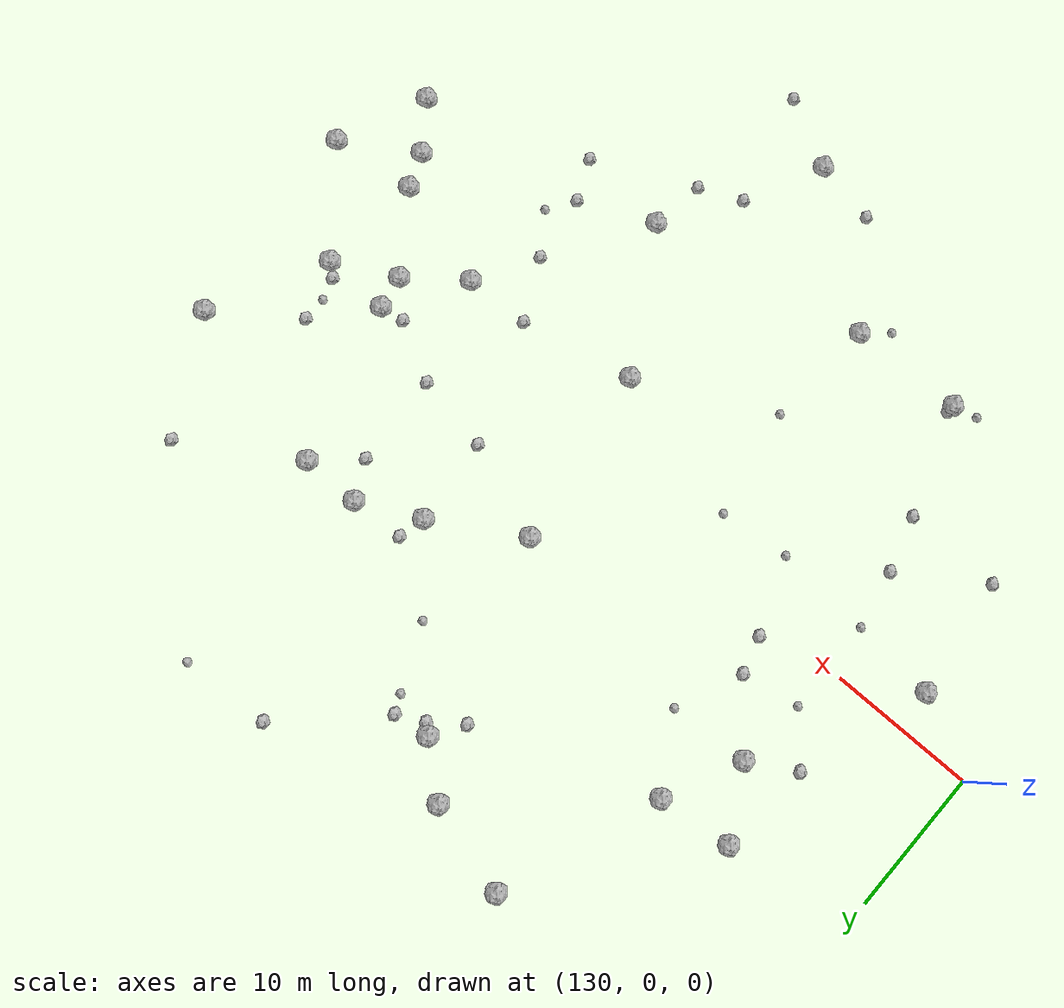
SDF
<sdf version="1.6">
 <world name="default">
  <include><uri>model://sun</uri></include>
  <model name="rock1_4_2">
   <include><uri>model://rock1</uri><pose>161.18001202732881 6.1246033134045135 0.5 0 0 0</pose></include>
  </model>
  <model name="rock1_4_3">
   <include><uri>model://rock1</uri><pose>175.63019919142323 -4.450995338454028 0.5 0 0 0</pose></include>
  </model>
  <model name="rock1_4_4">
   <include><uri>model://rock1</uri><pose>162.68112056038052 -26.176166151829076 0.5 0 0 0</pose></include>
  </model>
  <model name="rock1_4_5">
   <include><uri>model://rock1</uri><pose>187.8348194103687 8.736137206545052 0.5 0 0 0</pose></include>
  </model>
  <model name="rock1_4_6">
   <include><uri>model://rock1</uri><pose>163.151462612979 -6.312333316694449 0.5 0 0 0</pose></include>
  </model>
  <model name="rock1_4_7">
   <include><uri>model://rock1</uri><pose>184.20137734383766 -9.098329405868672 0.5 0 0 0</pose></include>
  </model>
  <model name="rock1_4_8">
   <include><uri>model://rock1</uri><pose>145.63526438491476 -18.79087476991414 0.5 0 0 0</pose></include>
  </model>
  <model name="rock1_4_9">
   <include><uri>model://rock1</uri><pose>154.4141084048062 22.757739737243497 0.5 0 0 0</pose></include>
  </model>
  <model name="rock1_4_10">
   <include><uri>model://rock1</uri><pose>138.86572819339335 12.749516522450627 0.5 0 0 0</pose></include>
  </model>
  <model name="rock1_4_11">
   <include><uri>model://rock1</uri><pose>178.98851683220647 0.8460404536111739 0.5 0 0 0</pose></include>
  </model>
  <model name="rock1_4_12">
   <include><uri>model://rock1</uri><pose>183.74665150148508 0.6990577433027632 0.5 0 0 0</pose></include>
  </model>
  <model name="rock1_4_13">
   <include><uri>model://rock1</uri><pose>168.76587323726326 -15.686156623183987 0.5 0 0 0</pose></include>
  </model>
  <model name="rock1_4_14">
   <include><uri>model://rock1</uri><pose>157.73645786737094 20.019079878341714 0.5 0 0 0</pose></include>
  </model>
  <model name="rock1_4_15">
   <include><uri>model://rock1</uri><pose>171.51534121703827 11.793385821304035 0.5 0 0 0</pose></include>
  </model>
  <model name="rock1_4_16">
   <include><uri>model://rock1</uri><pose>189.22433460729405 -5.992238127654403 0.5 0 0 0</pose></include>
  </model>
  <model name="rock1_4_17">
   <include><uri>model://rock1</uri><pose>148.05435744580012 24.47480041148429 0.5 0 0 0</pose></include>
  </model>
  <model name="rock1_4_18">
   <include><uri>model://rock1</uri><pose>183.2130496080744 -6.698743223876086 0.5 0 0 0</pose></include>
  </model>
  <model name="rock1_4_19">
   <include><uri>model://rock1</uri><pose>135.3349611878877 -2.8294462209317928 0.5 0 0 0</pose></include>
  </model>
  <model name="rock1_4_20">
   <include><uri>model://rock1</uri><pose>143.9520283714035 13.332481415476103 0.5 0 0 0</pose></include>
  </model>
  <model name="rock1_4_21">
   <include><uri>model://rock1</uri><pose>186.5726261720683 -12.282055485706842 0.5 0 0 0</pose></include>
  </model>
  <model name="rock1_4_22">
   <include><uri>model://rock1</uri><pose>179.4360832501557 -1.4914376181205107 0.5 0 0 0</pose></include>
  </model>
  <model name="rock1_4_23">
   <include><uri>model://rock1</uri><pose>153.46078112586062 -18.635387236230446 0.5 0 0 0</pose></include>
  </model>
  <model name="rock1_4_24">
   <include><uri>model://rock1</uri><pose>175.67073262212446 11.810353316054552 0.5 0 0 0</pose></include>
  </model>
  <model name="rock1_4_25">
   <include><uri>model://rock1</uri><pose>167.2623402877735 9.741111102107425 0.5 0 0 0</pose></include>
  </model>
  <model name="rock1_4_26">
   <include><uri>model://rock1</uri><pose>141.4719529844723 8.097762469058608 0.5 0 0 0</pose></include>
  </model>
  <model name="rock2_4_0">
   <include><uri>model://rock2</uri><pose>183.44067265615558 16.62950835742066 0.3 0 0 0</pose></include>
  </model>
  <model name="rock2_4_1">
   <include><uri>model://rock2</uri><pose>138.2590814321676 6.320376503802194 0.3 0 0 0</pose></include>
  </model>
  <model name="rock2_4_2">
   <include><uri>model://rock2</uri><pose>177.27274225148238 0.5816476751063497 0.3 0 0 0</pose></include>
  </model>
  <model name="rock2_4_3">
   <include><uri>model://rock2</uri><pose>165.30179393490675 -20.812294779125974 0.3 0 0 0</pose></include>
  </model>
  <model name="rock2_4_4">
   <include><uri>model://rock2</uri><pose>173.90797861475926 -13.452947265674023 0.3 0 0 0</pose></include>
  </model>
  <model name="rock2_4_5">
   <include><uri>model://rock2</uri><pose>168.254316411452 -19.515650734166208 0.3 0 0 0</pose></include>
  </model>
  <model name="rock2_4_6">
   <include><uri>model://rock2</uri><pose>182.83449831657506 1.4543282905592037 0.3 0 0 0</pose></include>
  </model>
  <model name="rock2_4_7">
   <include><uri>model://rock2</uri><pose>145.65668962705 -18.269450072759348 0.3 0 0 0</pose></include>
  </model>
  <model name="rock2_4_8">
   <include><uri>model://rock2</uri><pose>167.36153826834772 -28.756243340557862 0.3 0 0 0</pose></include>
  </model>
  <model name="rock2_4_9">
   <include><uri>model://rock2</uri><pose>172.83271938915126 9.219898996292791 0.3 0 0 0</pose></include>
  </model>
  <model name="rock2_4_10">
   <include><uri>model://rock2</uri><pose>167.68410820319184 11.63340418258413 0.3 0 0 0</pose></include>
  </model>
  <model name="rock2_4_11">
   <include><uri>model://rock2</uri><pose>173.17277079048907 -8.775475828688279 0.3 0 0 0</pose></include>
  </model>
  <model name="rock2_4_12">
   <include><uri>model://rock2</uri><pose>182.3013203674128 4.71928245295225 0.3 0 0 0</pose></include>
  </model>
  <model name="rock2_4_13">
   <include><uri>model://rock2</uri><pose>141.8839014707554 -7.4306262035193065 0.3 0 0 0</pose></include>
  </model>
  <model name="rock2_4_14">
   <include><uri>model://rock2</uri><pose>136.33762895224356 -11.12279496155611 0.3 0 0 0</pose></include>
  </model>
  <model name="rock2_4_15">
   <include><uri>model://rock2</uri><pose>160.26754943236242 20.388573831434464 0.3 0 0 0</pose></include>
  </model>
  <model name="rock2_4_16">
   <include><uri>model://rock2</uri><pose>171.0529890331671 -4.613486828729727 0.3 0 0 0</pose></include>
  </model>
  <model name="rock2_4_17">
   <include><uri>model://rock2</uri><pose>156.29726537657226 17.859828151889914 0.3 0 0 0</pose></include>
  </model>
  <model name="rock2_4_18">
   <include><uri>model://rock2</uri><pose>167.84292607660942 3.6902703860926493 0.3 0 0 0</pose></include>
  </model>
  <model name="rock2_4_19">
   <include><uri>model://rock2</uri><pose>158.1971431432801 -25.323513615451432 0.3 0 0 0</pose></include>
  </model>
  <model name="rock2_4_20">
   <include><uri>model://rock2</uri><pose>143.02081185116705 -11.250424640284056 0.3 0 0 0</pose></include>
  </model>
  <model name="rock2_4_21">
   <include><uri>model://rock2</uri><pose>144.9641854274297 3.8913438841259236 0.3 0 0 0</pose></include>
  </model>
  <model name="rock2_4_22">
   <include><uri>model://rock2</uri><pose>173.20734032175628 2.744060017485509 0.3 0 0 0</pose></include>
  </model>
  <model name="rock2_4_23">
   <include><uri>model://rock2</uri><pose>145.70400015731778 1.3391181216446988 0.3 0 0 0</pose></include>
  </model>
  <model name="rock2_4_24">
   <include><uri>model://rock2</uri><pose>158.3980604562906 19.472321330147878 0.3 0 0 0</pose></include>
  </model>
  <model name="rock2_4_25">
   <include><uri>model://rock2</uri><pose>175.18919654979632 -16.269927459512438 0.3 0 0 0</pose></include>
  </model>
  <model name="rock2_4_26">
   <include><uri>model://rock2</uri><pose>166.33355207074447 26.231293924621816 0.3 0 0 0</pose></include>
  </model>
  <model name="rock3_4_0">
   <include><uri>model://rock3</uri><pose>162.85393531051972 14.734152706445222 0.2 0 0 0</pose></include>
  </model>
  <model name="rock3_4_1">
   <include><uri>model://rock3</uri><pose>143.89750969349805 -19.278884084095914 0.2 0 0 0</pose></include>
  </model>
  <model name="rock3_4_2">
   <include><uri>model://rock3</uri><pose>172.6016749729122 26.601874806274743 0.2 0 0 0</pose></include>
  </model>
  <model name="rock3_4_3">
   <include><uri>model://rock3</uri><pose>140.94538803980916 3.1681177785269483 0.2 0 0 0</pose></include>
  </model>
  <model name="rock3_4_4">
   <include><uri>model://rock3</uri><pose>141.04250467240257 -3.4164078866857324 0.2 0 0 0</pose></include>
  </model>
  <model name="rock3_4_5">
   <include><uri>model://rock3</uri><pose>146.8943647655179 8.414750764470085 0.2 0 0 0</pose></include>
  </model>
  <model name="rock3_4_6">
   <include><uri>model://rock3</uri><pose>182.31919490043308 2.9683301104320208 0.2 0 0 0</pose></include>
  </model>
  <model name="rock3_4_7">
   <include><uri>model://rock3</uri><pose>147.68423524529484 -3.8735498029924855 0.2 0 0 0</pose></include>
  </model>
  <model name="rock3_4_8">
   <include><uri>model://rock3</uri><pose>153.95393453810087 -10.955184856719118 0.2 0 0 0</pose></include>
  </model>
  <model name="rock3_4_9">
   <include><uri>model://rock3</uri><pose>175.1240859409658 -11.594173366712127 0.2 0 0 0</pose></include>
  </model>
  <model name="rock3_4_10">
   <include><uri>model://rock3</uri><pose>152.5533384728948 -3.36377102716202 0.2 0 0 0</pose></include>
  </model>
  <model name="rock3_4_11">
   <include><uri>model://rock3</uri><pose>151.79514977354714 -20.15580197721744 0.2 0 0 0</pose></include>
  </model>
  <model name="rock3_4_12">
   <include><uri>model://rock3</uri><pose>160.8198026336315 19.15222598815182 0.2 0 0 0</pose></include>
  </model>
 </world>
</sdf>
